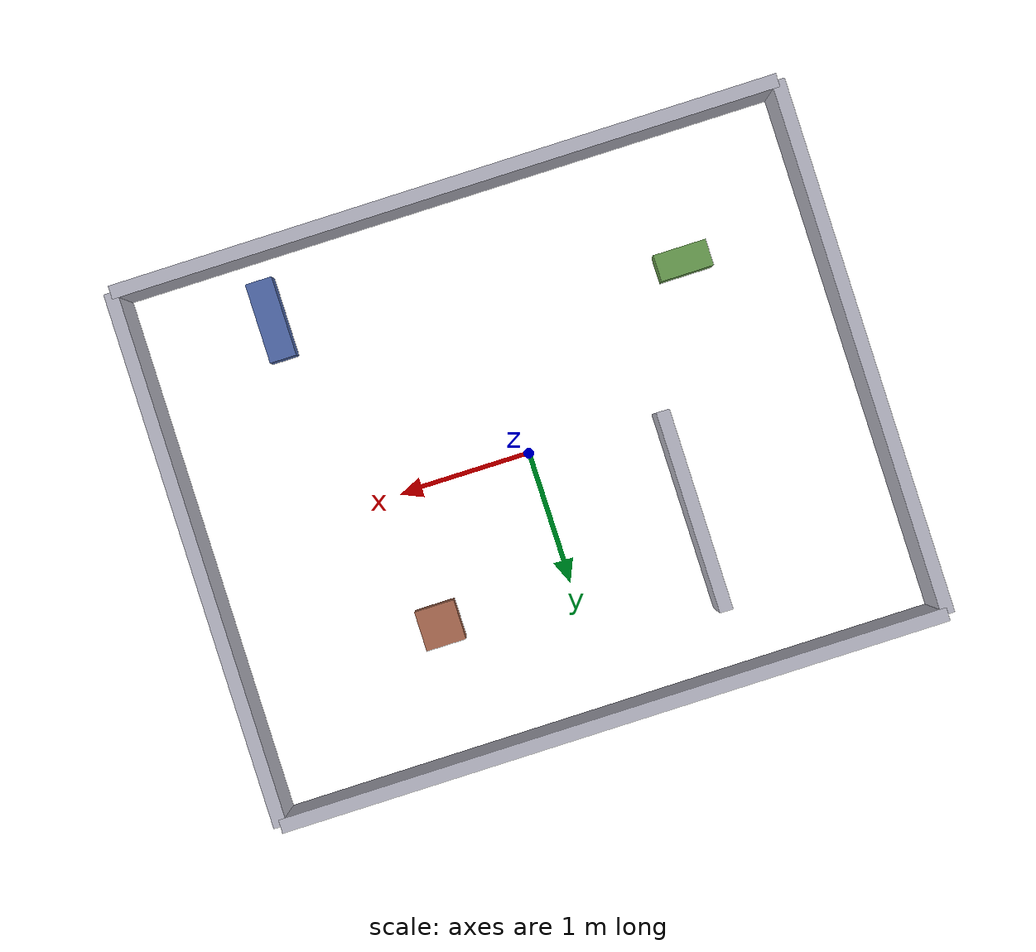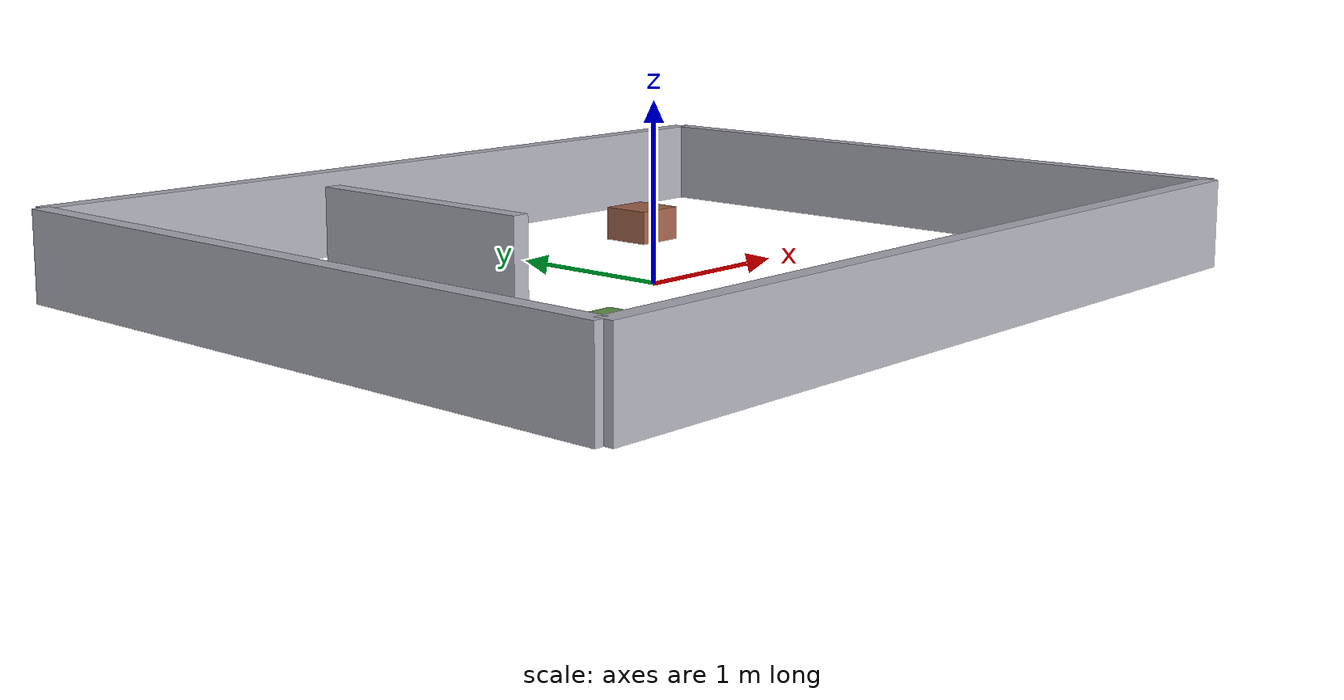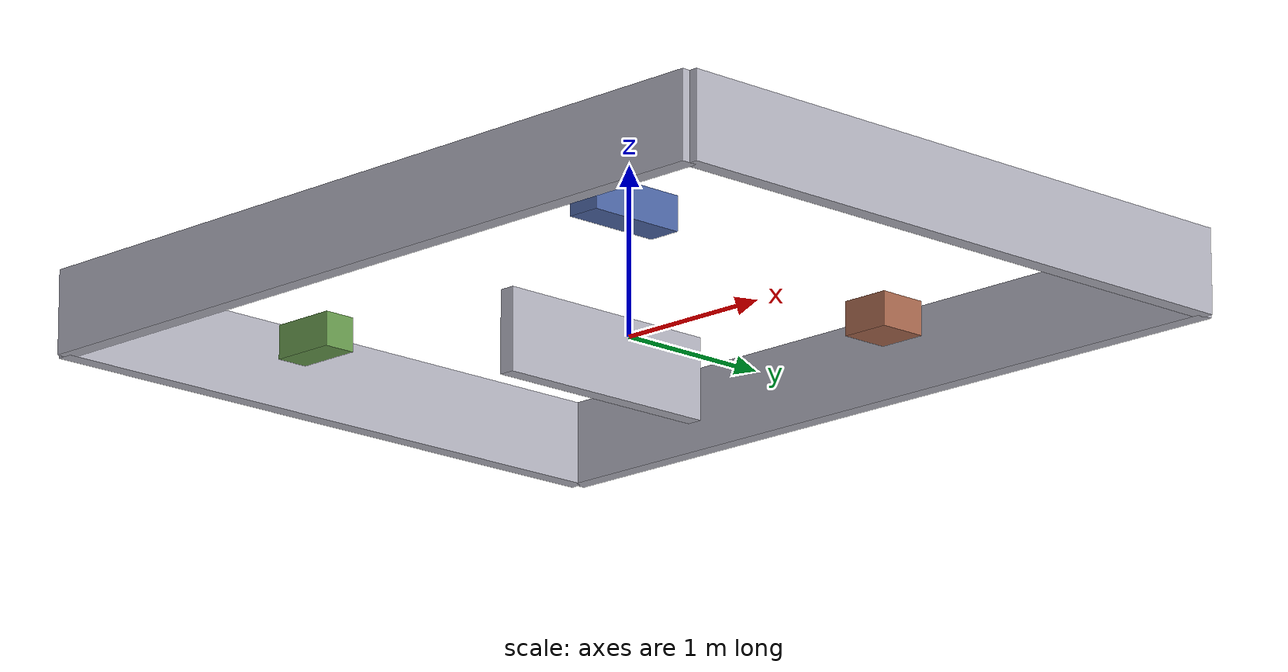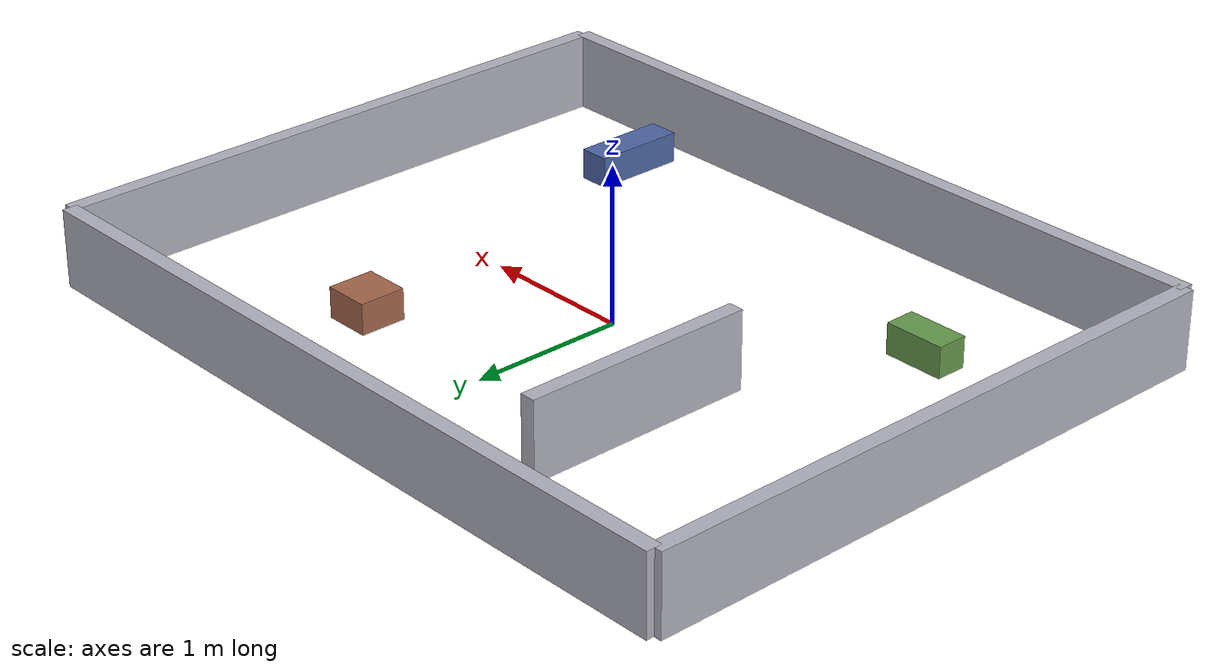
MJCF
<mujoco model="dev_world">
  <worldbody>
    <geom name="wall_south" type="box" pos="0 -2 0.25"   size="2.5 0.05 0.25" rgba="0.7 0.7 0.75 1"/>
    <geom name="wall_north" type="box" pos="0  2 0.25"   size="2.5 0.05 0.25" rgba="0.7 0.7 0.75 1"/>
    <geom name="wall_west"  type="box" pos="-2.5 0 0.25" size="0.05 2 0.25"   rgba="0.7 0.7 0.75 1"/>
    <geom name="wall_east"  type="box" pos="2.5  0 0.25" size="0.05 2 0.25"   rgba="0.7 0.7 0.75 1"/>
    <geom name="wall_inner" type="box" pos="-1 0.75 0.25" size="0.05 0.75 0.25" rgba="0.7 0.7 0.75 1"/>
    <geom name="box_a" type="box" pos=" 1.0  1.0 0.10" size="0.15 0.15 0.10" rgba="0.65 0.40 0.30 1"/>
    <geom name="box_b" type="box" pos="-1.5 -1.0 0.10" size="0.20 0.10 0.10" rgba="0.40 0.60 0.30 1"/>
    <geom name="box_c" type="box" pos=" 1.5 -1.5 0.10" size="0.10 0.30 0.10" rgba="0.30 0.40 0.65 1"/>
  </worldbody>
</mujoco>
